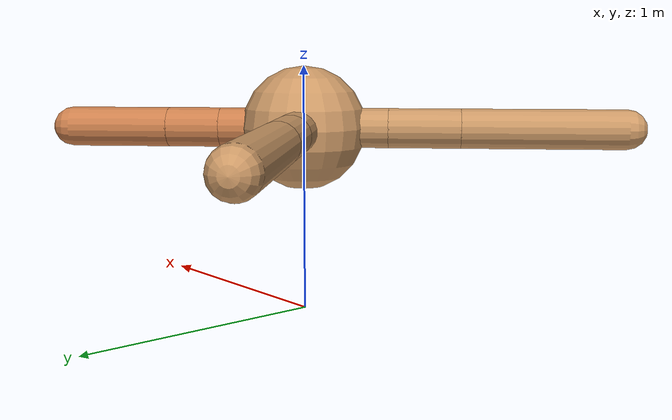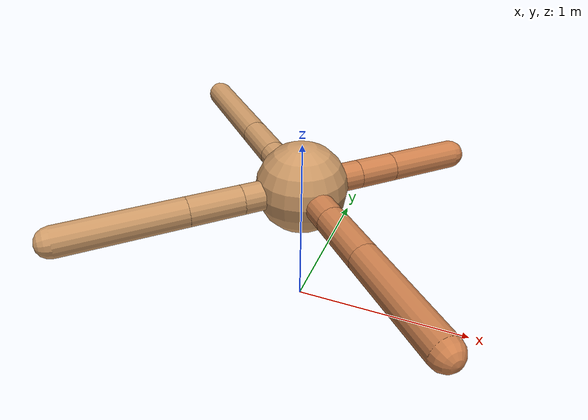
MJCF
<mujoco model="ant">
  <compiler angle="degree" coordinate="local" inertiafromgeom="true" />
  <option integrator="RK4" timestep="0.01" />
  <custom>
    <numeric data="0.0 0.0 0.55 1.0 0.0 0.0 0.0 0.0 1.0 0.0 -1.0 0.0 -1.0 0.0 1.0" name="init_qpos" />
  </custom>
  <default>
    <joint armature="1" damping="1" limited="true" />
    <geom conaffinity="0" condim="3" density="5.0" friction="1.5 0.1 0.1" margin="0.01" rgba="0.8 0.6 0.4 1" />
  </default>
  <worldbody>
    <body name="torso" pos="0 0 0.75">
      <geom name="torso_geom" pos="0 0 0" size="0.25" type="sphere" />

      <body name="front_left_leg" pos="0 0 0">
        <geom fromto="0.0 0.0 0.0 0.24081473280770865 0.24081473280770865 0.0" name="aux_1_geom" size="0.08" type="capsule" rgba=".8 .5 .3 1" />
        <body name="aux_1" pos="0.24081473280770865 0.24081473280770865 0.0">
          <joint axis="0 0 1" name="hip_1" pos="0.0 0.0 0.0" range="-40 40" type="hinge" />
          <geom fromto="0.0 0.0 0.0 0.15175112957355763 0.15175112957355763 0.0" name="left_leg_geom" size="0.08" type="capsule" rgba=".8 .5 .3 1" />
          <body pos="0.15175112957355763 0.15175112957355763 0.0" name="front_left_foot">
            <joint axis="-1 1 0" name="ankle_1" pos="0.0 0.0 0.0" range="30 100" type="hinge" />
            <geom fromto="0.0 0.0 0.0 0.2845287726145452 0.2845287726145452 0.0" name="left_ankle_geom" size="0.08" type="capsule" rgba=".8 .5 .3 1" />
          </body>
        </body>
      </body>
      <body name="front_right_leg" pos="0 0 0">
        <geom fromto="0.0 0.0 0.0 -0.2849704784434141 0.2849704784434141 0.0" name="aux_2_geom" size="0.08" type="capsule" />
        <body name="aux_2" pos="-0.2849704784434141 0.2849704784434141 0.0">
          <joint axis="0 0 1" name="hip_2" pos="0.0 0.0 0.0" range="-40 40" type="hinge" />
          <geom fromto="0.0 0.0 0.0 -0.21280553766891758 0.21280553766891758 0.0" name="right_leg_geom" size="0.08" type="capsule" />
          <body pos="-0.21280553766891758 0.21280553766891758 0.0" name="front_right_foot">
            <joint axis="1 1 0" name="ankle_2" pos="0.0 0.0 0.0" range="-100 -30" type="hinge" />
            <geom fromto="0.0 0.0 0.0 -0.5155791568773104 0.5155791568773104 0.0" name="right_ankle_geom" size="0.08" type="capsule" />
          </body>
        </body>
      </body>
      <body name="left_back_leg" pos="0 0 0">
        <geom fromto="0.0 0.0 0.0 -0.24169892336749899 -0.24169892336749899 0.0" name="aux_3_geom" size="0.08" type="capsule" />
        <body name="aux_3" pos="-0.24169892336749899 -0.24169892336749899 0.0">
          <joint axis="0 0 1" name="hip_3" pos="0.0 0.0 0.0" range="-40 40" type="hinge" />
          <geom fromto="0.0 0.0 0.0 -0.20435224978264022 -0.20435224978264022 0.0" name="back_leg_geom" size="0.08" type="capsule" />
          <body pos="-0.20435224978264022 -0.20435224978264022 0.0" name="left_back_foot">
            <joint axis="-1 1 0" name="ankle_3" pos="0.0 0.0 0.0" range="-100 -30" type="hinge" />
            <geom fromto="0.0 0.0 0.0 -0.4603584989222488 -0.4603584989222488 0.0" name="third_ankle_geom" size="0.08" type="capsule" />
          </body>
        </body>
      </body>
      <body name="right_back_leg" pos="0 0 0">
        <geom fromto="0.0 0.0 0.0 0.2503771822698759 -0.2503771822698759 0.0" name="aux_4_geom" size="0.08" type="capsule" rgba=".8 .5 .3 1" />
        <body name="aux_4" pos="0.2503771822698759 -0.2503771822698759 0.0">
          <joint axis="0 0 1" name="hip_4" pos="0.0 0.0 0.0" range="-40 40" type="hinge" />
          <geom fromto="0.0 0.0 0.0 0.22683282786919856 -0.22683282786919856 0.0" name="rightback_leg_geom" size="0.08" type="capsule" rgba=".8 .5 .3 1" />
          <body pos="0.22683282786919856 -0.22683282786919856 0.0" name="right_back_foot">
            <joint axis="1 1 0" name="ankle_4" pos="0.0 0.0 0.0" range="30 100" type="hinge" />
            <geom fromto="0.0 0.0 0.0 0.4250941058429538 -0.4250941058429538 0.0" name="fourth_ankle_geom" size="0.08" type="capsule" rgba=".8 .5 .3 1" />
          </body>
        </body>
      </body>
    </body>
  </worldbody>
  <actuator>
    <motor ctrllimited="true" ctrlrange="-1.0 1.0" joint="hip_4" gear="150" />
    <motor ctrllimited="true" ctrlrange="-1.0 1.0" joint="ankle_4" gear="150" />
    <motor ctrllimited="true" ctrlrange="-1.0 1.0" joint="hip_1" gear="150" />
    <motor ctrllimited="true" ctrlrange="-1.0 1.0" joint="ankle_1" gear="150" />
    <motor ctrllimited="true" ctrlrange="-1.0 1.0" joint="hip_2" gear="150" />
    <motor ctrllimited="true" ctrlrange="-1.0 1.0" joint="ankle_2" gear="150" />
    <motor ctrllimited="true" ctrlrange="-1.0 1.0" joint="hip_3" gear="150" />
    <motor ctrllimited="true" ctrlrange="-1.0 1.0" joint="ankle_3" gear="150" />
  </actuator>
</mujoco>
